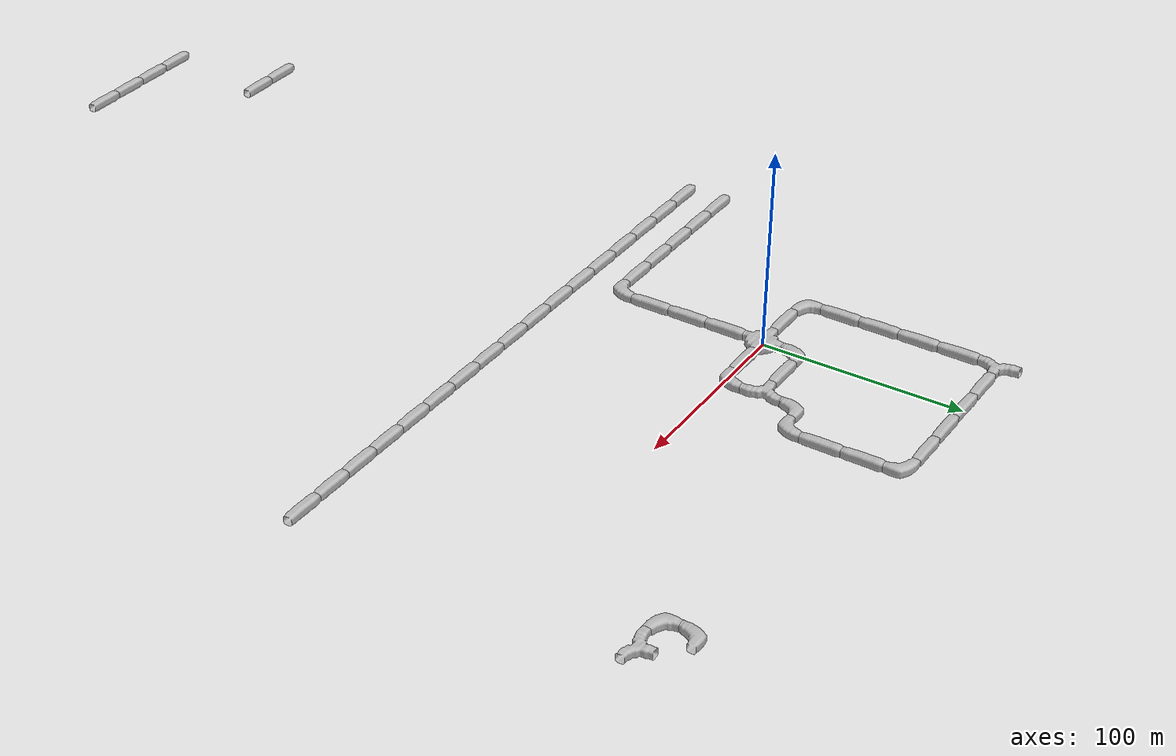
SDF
<sdf version="1.6">
 <world name="cave_32000">
  <include>
   <static>true</static>
   <name>cave_0_0</name>
   <pose>0 0 0 0 0 -1.5707963267948966</pose>
   <uri>model://cave_4way_20m</uri>
  </include>
  <include>
   <static>true</static>
   <name>cave_1_0</name>
   <pose>20 0 0 0 0 1.5707963267948966</pose>
   <uri>model://cave_straight_20m</uri>
  </include>
  <include>
   <static>true</static>
   <name>cave_2_0</name>
   <pose>40 0 0 0 0 1.5707963267948966</pose>
   <uri>model://cave_L_20m</uri>
  </include>
  <include>
   <static>true</static>
   <name>cave_2_1</name>
   <pose>40 20 0 0 0 1.5707963267948966</pose>
   <uri>model://cave_3way_20m</uri>
  </include>
  <include>
   <static>true</static>
   <name>cave_2_2</name>
   <pose>40 40 0 0 0 -1.5707963267948966</pose>
   <uri>model://cave_L_20m</uri>
  </include>
  <include>
   <static>true</static>
   <name>cave_3_2</name>
   <pose>60 40 0 0 0 1.5707963267948966</pose>
   <uri>model://cave_L_20m</uri>
  </include>
  <include>
   <static>true</static>
   <name>cave_3_3</name>
   <pose>60 60 0 0 0 0.0</pose>
   <uri>model://cave_straight_20m</uri>
  </include>
  <include>
   <static>true</static>
   <name>cave_3_4</name>
   <pose>60 80 0 0 0 0.0</pose>
   <uri>model://cave_straight_20m</uri>
  </include>
  <include>
   <static>true</static>
   <name>cave_3_5</name>
   <pose>60 100 0 0 0 3.141592653589793</pose>
   <uri>model://cave_L_20m</uri>
  </include>
  <include>
   <static>true</static>
   <name>cave_2_5</name>
   <pose>40 100 0 0 0 1.5707963267948966</pose>
   <uri>model://cave_straight_20m</uri>
  </include>
  <include>
   <static>true</static>
   <name>cave_1_5</name>
   <pose>20 100 0 0 0 1.5707963267948966</pose>
   <uri>model://cave_straight_20m</uri>
  </include>
  <include>
   <static>true</static>
   <name>cave_0_-1</name>
   <pose>0 -20 0 0 0 0.0</pose>
   <uri>model://cave_straight_20m</uri>
  </include>
  <include>
   <static>true</static>
   <name>cave_0_-2</name>
   <pose>0 -40 0 0 0 0.0</pose>
   <uri>model://cave_straight_20m</uri>
  </include>
  <include>
   <static>true</static>
   <name>cave_0_-3</name>
   <pose>0 -60 0 0 0 0.0</pose>
   <uri>model://cave_straight_20m</uri>
  </include>
  <include>
   <static>true</static>
   <name>cave_0_-4</name>
   <pose>0 -80 0 0 0 1.5707963267948966</pose>
   <uri>model://cave_L_20m</uri>
  </include>
  <include>
   <static>true</static>
   <name>cave_-1_-4</name>
   <pose>-20 -80 0 0 0 1.5707963267948966</pose>
   <uri>model://cave_straight_20m</uri>
  </include>
  <include>
   <static>true</static>
   <name>cave_-2_-4</name>
   <pose>-40 -80 0 0 0 1.5707963267948966</pose>
   <uri>model://cave_straight_20m</uri>
  </include>
  <include>
   <static>true</static>
   <name>cave_-3_-4</name>
   <pose>-60 -80 0 0 0 1.5707963267948966</pose>
   <uri>model://cave_straight_20m</uri>
  </include>
  <include>
   <static>true</static>
   <name>cave_-4_-4</name>
   <pose>-80 -80 0 0 0 1.5707963267948966</pose>
   <uri>model://cave_straight_20m</uri>
  </include>
  <include>
   <static>true</static>
   <name>cave_-5_-4</name>
   <pose>-100 -80 0 0 0 1.5707963267948966</pose>
   <uri>model://cave_straight_20m</uri>
  </include>
  <include>
   <static>true</static>
   <name>cave_-5_-5</name>
   <pose>-100 -100 0 0 0 1.5707963267948966</pose>
   <uri>model://cave_straight_20m</uri>
  </include>
  <include>
   <static>true</static>
   <name>cave_-4_-5</name>
   <pose>-80 -100 0 0 0 1.5707963267948966</pose>
   <uri>model://cave_straight_20m</uri>
  </include>
  <include>
   <static>true</static>
   <name>cave_-3_-5</name>
   <pose>-60 -100 0 0 0 1.5707963267948966</pose>
   <uri>model://cave_straight_20m</uri>
  </include>
  <include>
   <static>true</static>
   <name>cave_-2_-5</name>
   <pose>-40 -100 0 0 0 1.5707963267948966</pose>
   <uri>model://cave_straight_20m</uri>
  </include>
  <include>
   <static>true</static>
   <name>cave_-1_-5</name>
   <pose>-20 -100 0 0 0 1.5707963267948966</pose>
   <uri>model://cave_straight_20m</uri>
  </include>
  <include>
   <static>true</static>
   <name>cave_0_-5</name>
   <pose>0 -100 0 0 0 1.5707963267948966</pose>
   <uri>model://cave_straight_20m</uri>
  </include>
  <include>
   <static>true</static>
   <name>cave_1_-5</name>
   <pose>20 -100 0 0 0 1.5707963267948966</pose>
   <uri>model://cave_straight_20m</uri>
  </include>
  <include>
   <static>true</static>
   <name>cave_2_-5</name>
   <pose>40 -100 0 0 0 1.5707963267948966</pose>
   <uri>model://cave_straight_20m</uri>
  </include>
  <include>
   <static>true</static>
   <name>cave_3_-5</name>
   <pose>60 -100 0 0 0 1.5707963267948966</pose>
   <uri>model://cave_straight_20m</uri>
  </include>
  <include>
   <static>true</static>
   <name>cave_4_-5</name>
   <pose>80 -100 0 0 0 1.5707963267948966</pose>
   <uri>model://cave_straight_20m</uri>
  </include>
  <include>
   <static>true</static>
   <name>cave_5_-5</name>
   <pose>100 -100 0 0 0 1.5707963267948966</pose>
   <uri>model://cave_straight_20m</uri>
  </include>
  <include>
   <static>true</static>
   <name>cave_6_-5</name>
   <pose>120 -100 0 0 0 1.5707963267948966</pose>
   <uri>model://cave_straight_20m</uri>
  </include>
  <include>
   <static>true</static>
   <name>cave_7_-5</name>
   <pose>140 -100 0 0 0 1.5707963267948966</pose>
   <uri>model://cave_straight_20m</uri>
  </include>
  <include>
   <static>true</static>
   <name>cave_8_-5</name>
   <pose>160 -100 0 0 0 1.5707963267948966</pose>
   <uri>model://cave_straight_20m</uri>
  </include>
  <include>
   <static>true</static>
   <name>cave_9_-5</name>
   <pose>180 -100 0 0 0 1.5707963267948966</pose>
   <uri>model://cave_straight_20m</uri>
  </include>
  <include>
   <static>true</static>
   <name>cave_10_-5</name>
   <pose>200 -100 0 0 0 1.5707963267948966</pose>
   <uri>model://cave_straight_20m</uri>
  </include>
  <include>
   <static>true</static>
   <name>cave_11_-5</name>
   <pose>220 -100 0 0 0 1.5707963267948966</pose>
   <uri>model://cave_straight_20m</uri>
  </include>
  <include>
   <static>true</static>
   <name>cave_10_4</name>
   <pose>200 80 0 0 0 -1.5707963267948966</pose>
   <uri>model://cave_L_20m</uri>
  </include>
  <include>
   <static>true</static>
   <name>cave_10_3</name>
   <pose>200 60 0 0 0 0.0</pose>
   <uri>model://cave_L_20m</uri>
  </include>
  <include>
   <static>true</static>
   <name>cave_11_3</name>
   <pose>220 60 0 0 0 0.0</pose>
   <uri>model://cave_3way_20m</uri>
  </include>
  <include>
   <static>true</static>
   <name>cave_-4_-21</name>
   <pose>-80 -420 0 0 0 1.5707963267948966</pose>
   <uri>model://cave_straight_20m</uri>
  </include>
  <include>
   <static>true</static>
   <name>cave_-3_-21</name>
   <pose>-60 -420 0 0 0 1.5707963267948966</pose>
   <uri>model://cave_straight_20m</uri>
  </include>
  <include>
   <static>true</static>
   <name>cave_-2_-21</name>
   <pose>-40 -420 0 0 0 1.5707963267948966</pose>
   <uri>model://cave_straight_20m</uri>
  </include>
  <include>
   <static>true</static>
   <name>cave_-1_-21</name>
   <pose>-20 -420 0 0 0 1.5707963267948966</pose>
   <uri>model://cave_straight_20m</uri>
  </include>
  <include>
   <static>true</static>
   <name>cave_-5_-18</name>
   <pose>-100 -360 0 0 0 1.5707963267948966</pose>
   <uri>model://cave_straight_20m</uri>
  </include>
  <include>
   <static>true</static>
   <name>cave_-4_-18</name>
   <pose>-80 -360 0 0 0 1.5707963267948966</pose>
   <uri>model://cave_straight_20m</uri>
  </include>
  <include>
   <static>true</static>
   <name>cave_-1_0</name>
   <pose>-20 0 0 0 0 1.5707963267948966</pose>
   <uri>model://cave_straight_20m</uri>
  </include>
  <include>
   <static>true</static>
   <name>cave_-2_0</name>
   <pose>-40 0 0 0 0 0.0</pose>
   <uri>model://cave_L_20m</uri>
  </include>
  <include>
   <static>true</static>
   <name>cave_-2_1</name>
   <pose>-40 20 0 0 0 0.0</pose>
   <uri>model://cave_straight_20m</uri>
  </include>
  <include>
   <static>true</static>
   <name>cave_-2_2</name>
   <pose>-40 40 0 0 0 0.0</pose>
   <uri>model://cave_straight_20m</uri>
  </include>
  <include>
   <static>true</static>
   <name>cave_-2_3</name>
   <pose>-40 60 0 0 0 0.0</pose>
   <uri>model://cave_straight_20m</uri>
  </include>
  <include>
   <static>true</static>
   <name>cave_-2_4</name>
   <pose>-40 80 0 0 0 0.0</pose>
   <uri>model://cave_straight_20m</uri>
  </include>
  <include>
   <static>true</static>
   <name>cave_-2_5</name>
   <pose>-40 100 0 0 0 -1.5707963267948966</pose>
   <uri>model://cave_3way_20m</uri>
  </include>
  <include>
   <static>true</static>
   <name>cave_-1_5</name>
   <pose>-20 100 0 0 0 1.5707963267948966</pose>
   <uri>model://cave_straight_20m</uri>
  </include>
  <include>
   <static>true</static>
   <name>cave_0_5</name>
   <pose>0 100 0 0 0 1.5707963267948966</pose>
   <uri>model://cave_straight_20m</uri>
  </include>
  <include>
   <static>true</static>
   <name>cave_0_1</name>
   <pose>0 20 0 0 0 -1.5707963267948966</pose>
   <uri>model://cave_L_20m</uri>
  </include>
  <include>
   <static>true</static>
   <name>cave_1_1</name>
   <pose>20 20 0 0 0 1.5707963267948966</pose>
   <uri>model://cave_straight_20m</uri>
  </include>
 </world>
</sdf>
